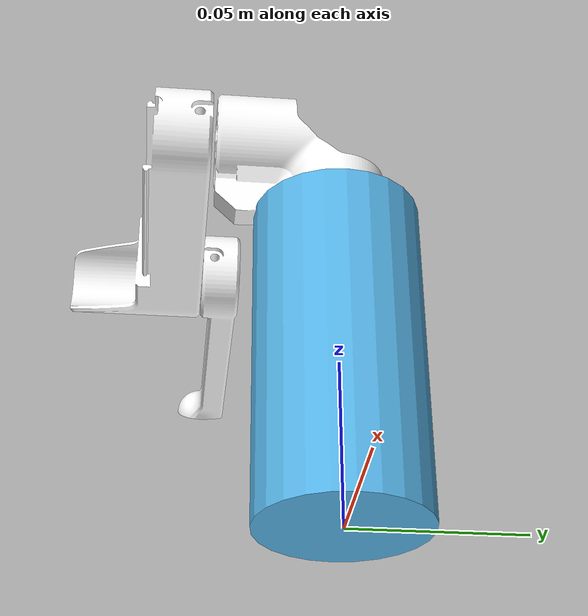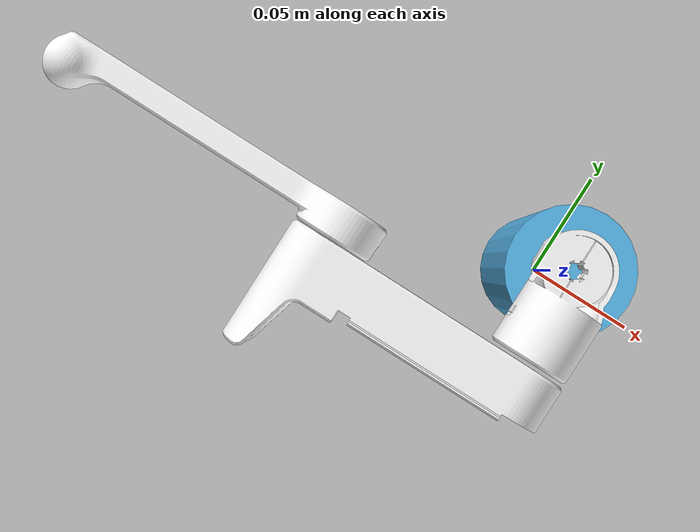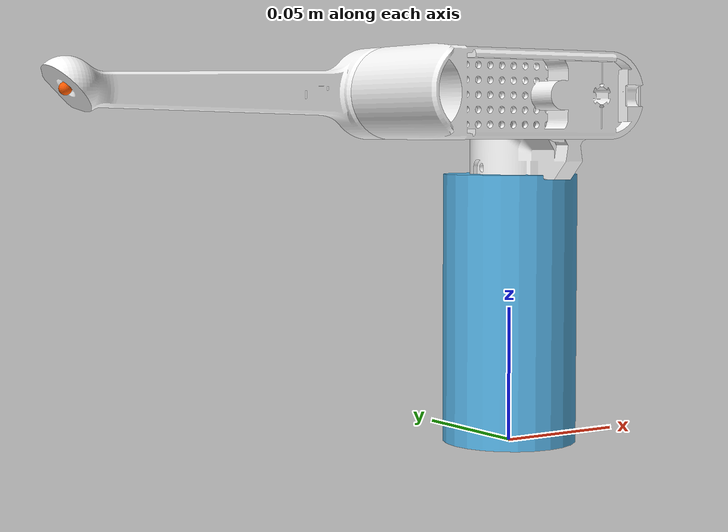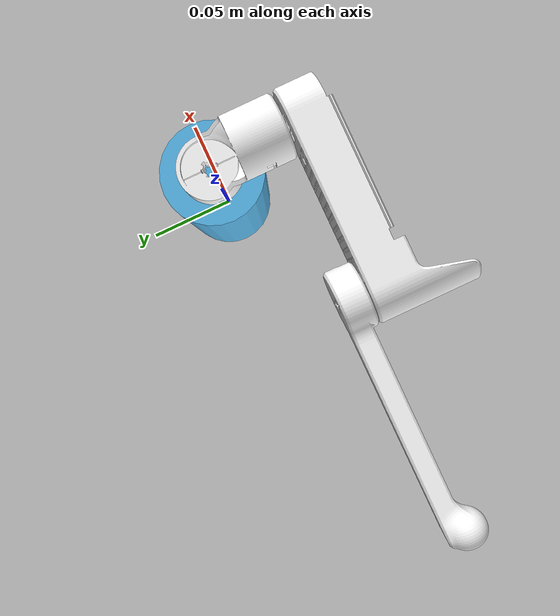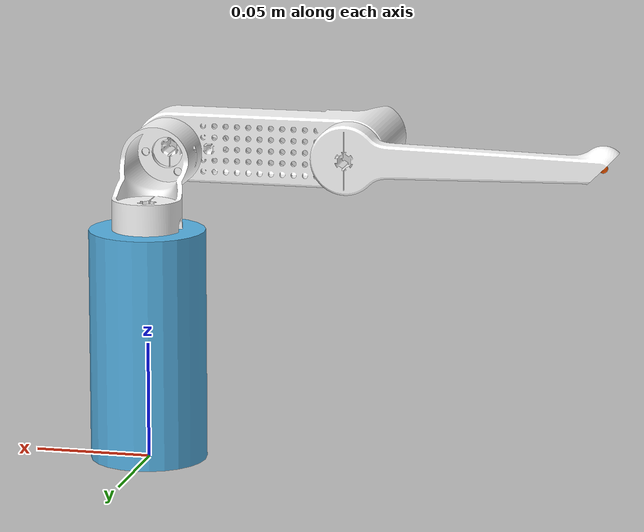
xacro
<?xml version="1.0"?>
<robot xmlns:xacro="http://www.ros.org/wiki/xacro">

    <!-- Materials -->

    <material name="white">
        <color rgba="1 1 1 1"/>
    </material>

    <material name="orange">
        <color rgba="1 0.3569 0 1"/>
    </material>

    <!-- Joints -->

    <joint name="world_to_fixture" type="fixed">
        <parent link="world"/>
        <child link="fixture"/>
        <origin rpy="0 0 0" xyz="0 0 0"/>
    </joint>

    <joint name="fixture_to_hip" type="continuous">
        <parent link="fixture"/>
        <child link="hip"/>
        <axis xyz="0 0 1"/>
        <origin rpy="0 0 0" xyz="0 0 0.10"/>
        <dynamics damping="10.0" friction="10.0"/>
    </joint>

    <joint name="hip_to_upper_leg" type="continuous">
        <parent link="hip"/>
        <child link="upper_leg"/>
        <axis xyz="0 0 1"/>
        <origin rpy="1.5708 0 0" xyz="0 0 0.028"/>
        <dynamics damping="2.0" friction="2.0"/>
    </joint>

    <joint name="upper_leg_to_lower_leg" type="continuous">
        <parent link="upper_leg"/>
        <child link="lower_leg"/>
        <axis xyz="0 0 1"/>
        <origin rpy="3.14159 0 0" xyz="-0.08004 0 0.040"/>
        <dynamics damping="2.0" friction="2.0"/>
    </joint>

    <joint name="lower_leg_to_end_effector" type="fixed">
        <parent link="lower_leg"/>
        <child link="end_effector"/>
        <origin rpy="0 0 0" xyz="-0.11003 0 0.006"/>
    </joint>

    <!-- Links -->

    <link name="world">
    </link>

    <link name="fixture">
        <visual>
        <geometry>
            <cylinder length="0.10" radius="0.025"/>
        </geometry>
        <origin rpy="0 0 0" xyz="0 0 0.05"/>
        </visual>
        <collision>
        <geometry>
            <cylinder length="0.10" radius="0.025"/>
        </geometry>
        <origin rpy="0 0 0" xyz="0 0 0.05"/>
        </collision>
        <inertial>
        <mass value="0.1"/>
        <inertia ixx="0.001979" ixy="0" ixz="0" iyy="0.001979" iyz="0" izz="0.0001041"/>
        </inertial>
    </link>

    <link name="hip">
        <visual>
        <geometry>
            <mesh filename="file:///home/ubuntu/ros2_ws/src/my_bot/description/stl/hip_rotated.stl"
            scale="0.001 0.001 0.001"/>
    </geometry>
        <origin rpy="0 0 4.71239" xyz="0 0 0"/>
        <material name="white"/>
        </visual>
        <collision>
        <geometry>
            <mesh filename="file:///home/ubuntu/ros2_ws/src/my_bot/description/stl/hip_rotated.stl"
            scale="0.001 0.001 0.001"/>
        </geometry>
        <origin rpy="0 0 4.71239" xyz="0 0 0"/>
        </collision>
        <inertial>
        <mass value="0.107"/>
        <inertia ixx="0.006094" ixy="0" ixz="0" iyy="0.006094" iyz="0" izz="0.0001563"/>
        </inertial>
    </link>

    <link name ="upper_leg">
        <visual>
        <geometry>
            <mesh filename="file:///home/ubuntu/ros2_ws/src/my_bot/description/stl/upper_leg.stl"
            scale="0.001 0.001 0.001"/>
        </geometry>
        <origin rpy="3.14159 -1.57080 0" xyz="0 0 0.04"/>
        <material name="white"/>
        </visual>
        <collision>
        <geometry>
            <mesh filename="file:///home/ubuntu/ros2_ws/src/my_bot/description/stl/upper_leg.stl"
            scale="0.001 0.001 0.001"/>
        </geometry>
        <origin rpy="3.14159 -1.57080 0" xyz="0 0 0.04"/>
        </collision>
        <inertial>
        <mass value="0.117"/>
        <inertia ixx="0.006094" ixy="0" ixz="0" iyy="0.006094" iyz="0" izz="0.0001563"/>
        </inertial>
    </link>

    <link name ="lower_leg">
        <visual>
        <geometry>
            <mesh filename="file:///home/ubuntu/ros2_ws/src/my_bot/description/stl/lower_leg.stl"
            scale="0.001 0.001 0.001"/>
        </geometry>
        <origin rpy="-3.14159 -1.57080 0" xyz="0 0 0.0035"/>
        <material name="white"/>
        </visual>
        <collision>
        <geometry>
            <mesh filename="file:///home/ubuntu/ros2_ws/src/my_bot/description/stl/lower_leg.stl"
            scale="0.001 0.001 0.001"/>
        </geometry>
        <origin rpy="-3.14159 -1.57080 0" xyz="0 0 0.0035"/>
        </collision>
        <inertial>
        <mass value="0.013"/>
        <inertia ixx="0.006094" ixy="0" ixz="0" iyy="0.006094" iyz="0" izz="0.0001563"/>
        </inertial>
    </link>

    <link name ="end_effector">
        <visual>
        <geometry>
            <sphere radius="0.002"/>
        </geometry>
        <origin rpy="0 0 0 " xyz="0 0 0"/>
        <material name="orange"/>
        </visual>
        <collision>
        <geometry>
            <sphere radius="0.002"/>
        </geometry>
        <origin rpy="0 0 0 " xyz="0 0 0"/>
        </collision>
        <inertial>
        <mass value="3.0"/>
        <inertia ixx="0.006094" ixy="0" ixz="0" iyy="0.006094" iyz="0" izz="0.0001563"/>
        </inertial>
    </link>

</robot>
